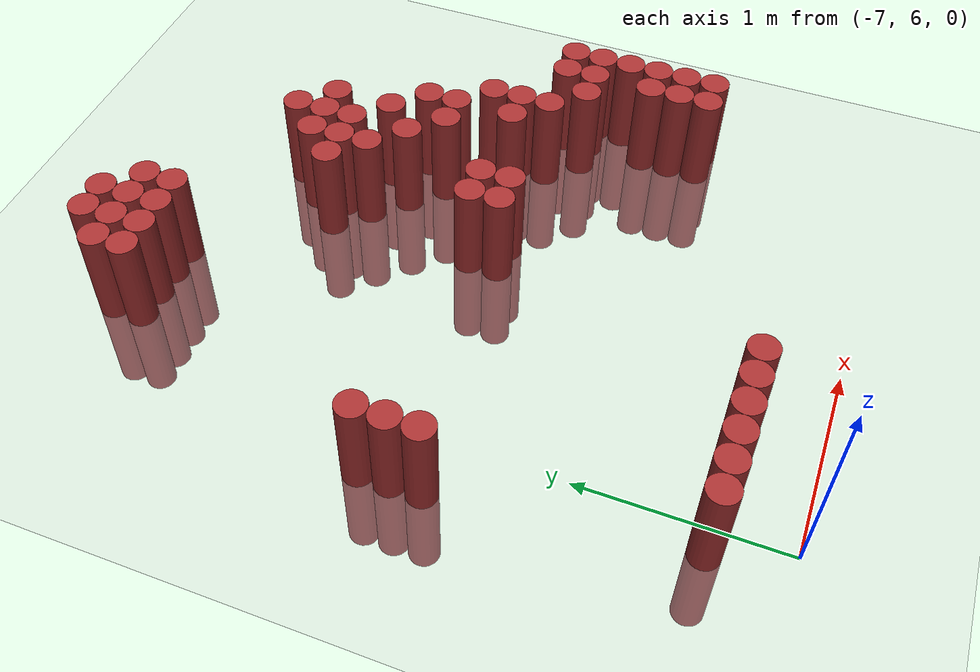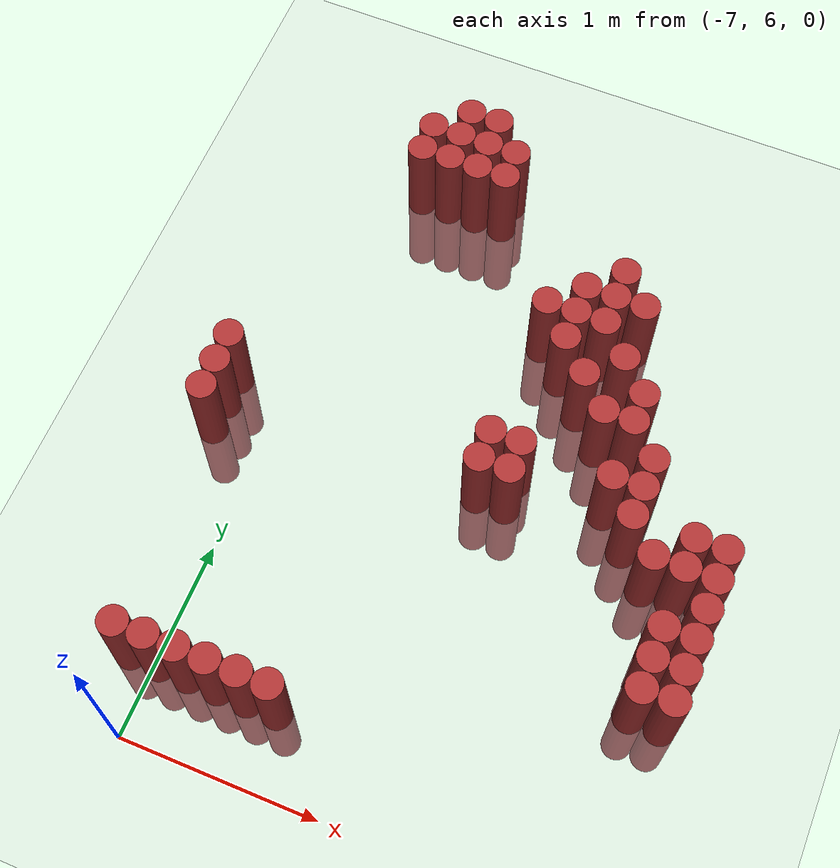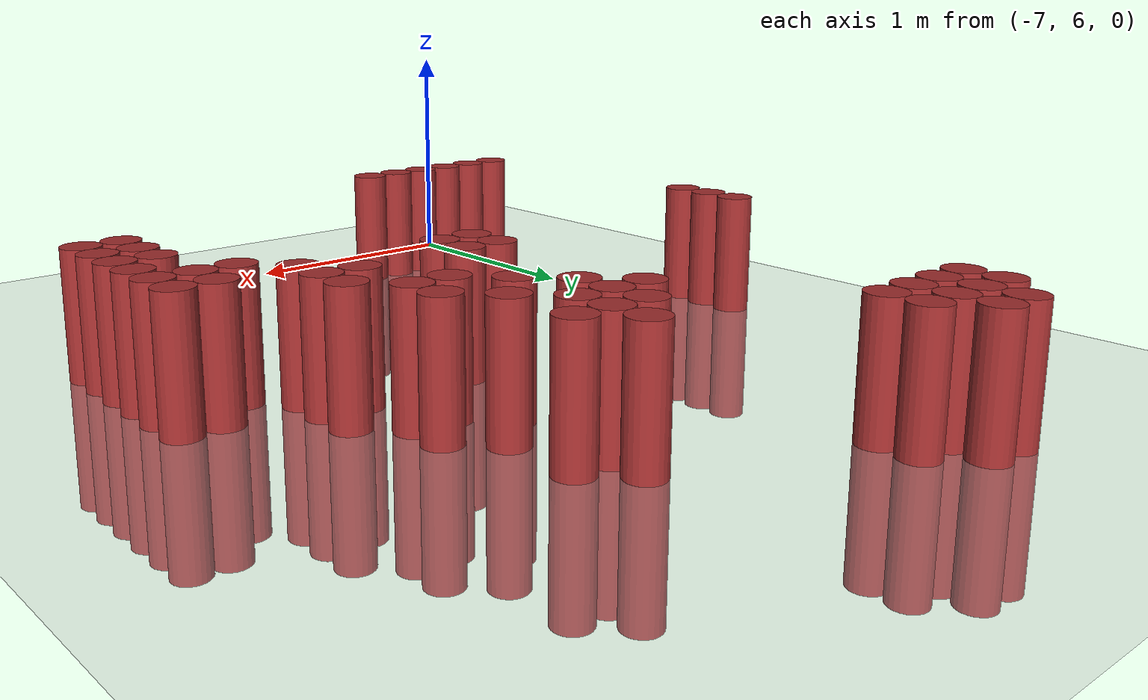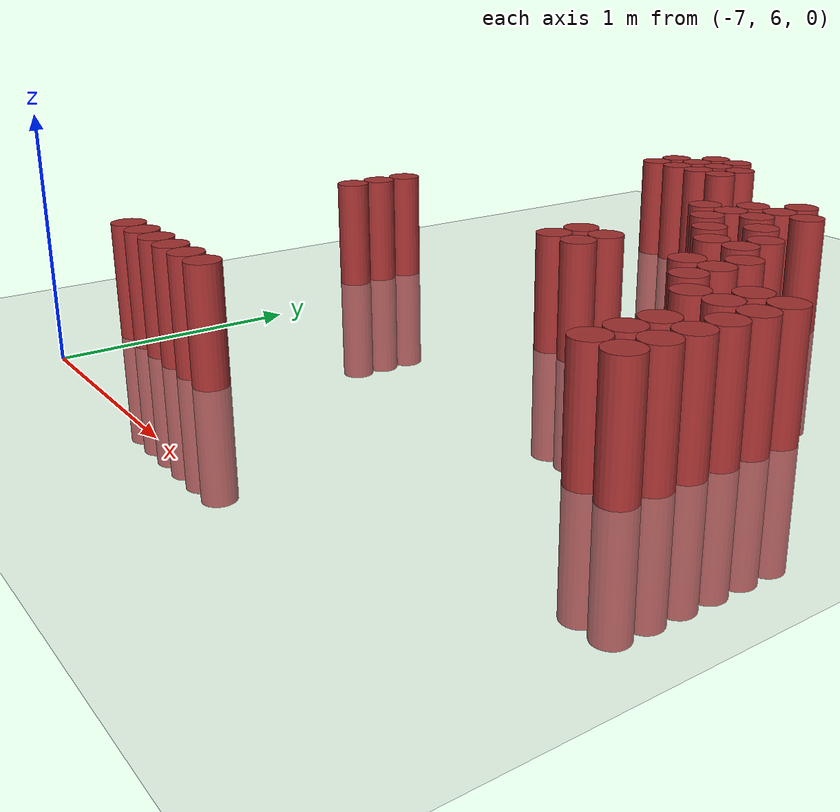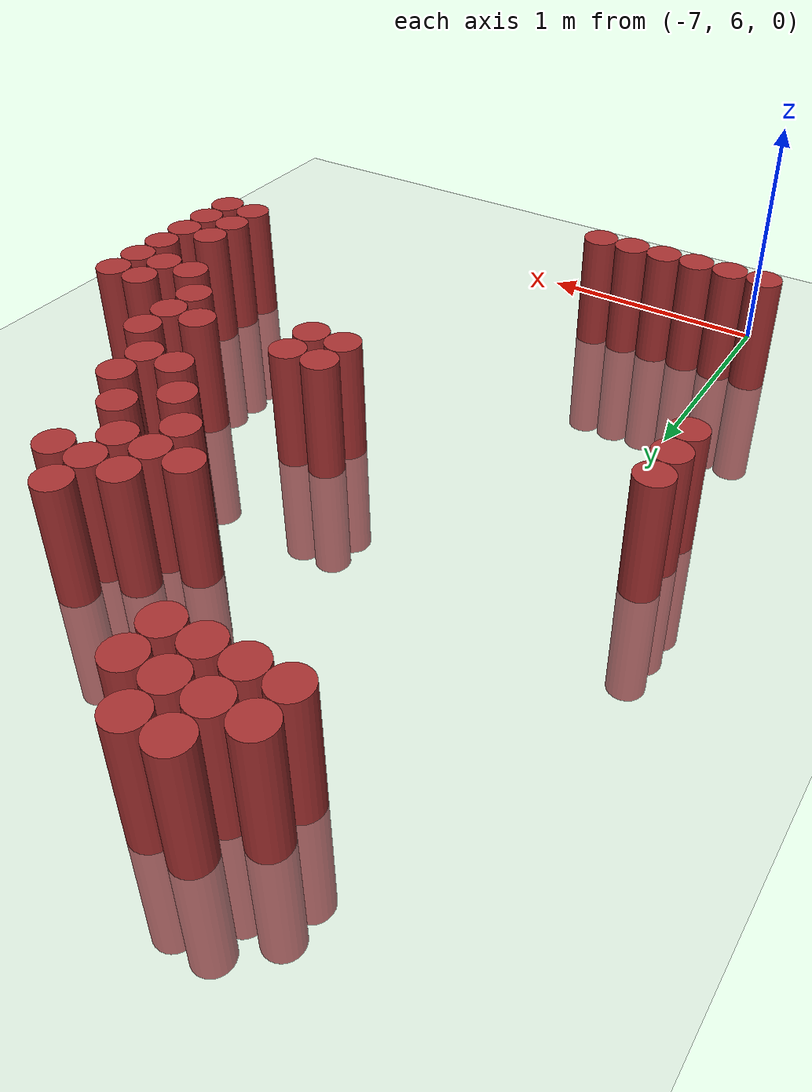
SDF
<sdf version="1.6">
 <world name="default">
  <model name="ground_plane">
   <static>1</static>
   <link name="link">
    <collision name="collision">
     <geometry><plane><normal>0 0 1</normal><size>100 100</size></plane></geometry>
     <surface><friction><ode><mu>100</mu><mu2>50</mu2></ode></friction></surface>
    </collision>
    <visual name="visual">
     <cast_shadows>0</cast_shadows>
     <geometry><plane><normal>0 0 1</normal><size>100 100</size></plane></geometry>
     <material>
      <script><uri>file://media/materials/scripts/gazebo.material</uri><name>Gazebo/Grey</name></script>
     </material>
    </visual>
   </link>
  </model>
  <model name="unit_cylinder_195">
   <static>1</static>
   <pose>-7.275000 7.575000 0.000000 0.000000 0.000000 0.000000</pose>
   <link name="link">
    <inertial>
     <mass>1</mass>
     <inertia><ixx>0.145833</ixx><ixy>0</ixy><ixz>0</ixz><iyy>0.145833</iyy><iyz>0</iyz><izz>0.125</izz></inertia>
    </inertial>
    <collision name="collision">
     <geometry><cylinder><radius>0.075000</radius><length>1</length></cylinder></geometry>
    </collision>
    <visual name="visual">
     <geometry><cylinder><radius>0.075000</radius><length>1</length></cylinder></geometry>
     <material>
      <ambient>0.648000 0.192000 0.192000 1</ambient>
      <diffuse>0.648000 0.192000 0.192000 1</diffuse>
     </material>
     <material>
      <script><name>Gazebo/Grey</name><uri>file://media/materials/scripts/gazebo.material</uri></script>
     </material>
    </visual>
   </link>
  </model>
  <model name="unit_cylinder_196">
   <static>1</static>
   <pose>-7.275000 7.725000 0.000000 0.000000 0.000000 0.000000</pose>
   <link name="link">
    <inertial>
     <mass>1</mass>
     <inertia><ixx>0.145833</ixx><ixy>0</ixy><ixz>0</ixz><iyy>0.145833</iyy><iyz>0</iyz><izz>0.125</izz></inertia>
    </inertial>
    <collision name="collision">
     <geometry><cylinder><radius>0.075000</radius><length>1</length></cylinder></geometry>
    </collision>
    <visual name="visual">
     <geometry><cylinder><radius>0.075000</radius><length>1</length></cylinder></geometry>
     <material>
      <ambient>0.648000 0.192000 0.192000 1</ambient>
      <diffuse>0.648000 0.192000 0.192000 1</diffuse>
     </material>
     <material>
      <script><name>Gazebo/Grey</name><uri>file://media/materials/scripts/gazebo.material</uri></script>
     </material>
    </visual>
   </link>
  </model>
  <model name="unit_cylinder_197">
   <static>1</static>
   <pose>-7.275000 7.875000 0.000000 0.000000 0.000000 0.000000</pose>
   <link name="link">
    <inertial>
     <mass>1</mass>
     <inertia><ixx>0.145833</ixx><ixy>0</ixy><ixz>0</ixz><iyy>0.145833</iyy><iyz>0</iyz><izz>0.125</izz></inertia>
    </inertial>
    <collision name="collision">
     <geometry><cylinder><radius>0.075000</radius><length>1</length></cylinder></geometry>
    </collision>
    <visual name="visual">
     <geometry><cylinder><radius>0.075000</radius><length>1</length></cylinder></geometry>
     <material>
      <ambient>0.648000 0.192000 0.192000 1</ambient>
      <diffuse>0.648000 0.192000 0.192000 1</diffuse>
     </material>
     <material>
      <script><name>Gazebo/Grey</name><uri>file://media/materials/scripts/gazebo.material</uri></script>
     </material>
    </visual>
   </link>
  </model>
  <model name="unit_cylinder_199">
   <static>1</static>
   <pose>-7.125000 6.375000 0.000000 0.000000 0.000000 0.000000</pose>
   <link name="link">
    <inertial>
     <mass>1</mass>
     <inertia><ixx>0.145833</ixx><ixy>0</ixy><ixz>0</ixz><iyy>0.145833</iyy><iyz>0</iyz><izz>0.125</izz></inertia>
    </inertial>
    <collision name="collision">
     <geometry><cylinder><radius>0.075000</radius><length>1</length></cylinder></geometry>
    </collision>
    <visual name="visual">
     <geometry><cylinder><radius>0.075000</radius><length>1</length></cylinder></geometry>
     <material>
      <ambient>0.648000 0.192000 0.192000 1</ambient>
      <diffuse>0.648000 0.192000 0.192000 1</diffuse>
     </material>
     <material>
      <script><name>Gazebo/Grey</name><uri>file://media/materials/scripts/gazebo.material</uri></script>
     </material>
    </visual>
   </link>
  </model>
  <model name="unit_cylinder_201">
   <static>1</static>
   <pose>-6.975000 6.375000 0.000000 0.000000 0.000000 0.000000</pose>
   <link name="link">
    <inertial>
     <mass>1</mass>
     <inertia><ixx>0.145833</ixx><ixy>0</ixy><ixz>0</ixz><iyy>0.145833</iyy><iyz>0</iyz><izz>0.125</izz></inertia>
    </inertial>
    <collision name="collision">
     <geometry><cylinder><radius>0.075000</radius><length>1</length></cylinder></geometry>
    </collision>
    <visual name="visual">
     <geometry><cylinder><radius>0.075000</radius><length>1</length></cylinder></geometry>
     <material>
      <ambient>0.648000 0.192000 0.192000 1</ambient>
      <diffuse>0.648000 0.192000 0.192000 1</diffuse>
     </material>
     <material>
      <script><name>Gazebo/Grey</name><uri>file://media/materials/scripts/gazebo.material</uri></script>
     </material>
    </visual>
   </link>
  </model>
  <model name="unit_cylinder_203">
   <static>1</static>
   <pose>-6.825000 6.375000 0.000000 0.000000 0.000000 0.000000</pose>
   <link name="link">
    <inertial>
     <mass>1</mass>
     <inertia><ixx>0.145833</ixx><ixy>0</ixy><ixz>0</ixz><iyy>0.145833</iyy><iyz>0</iyz><izz>0.125</izz></inertia>
    </inertial>
    <collision name="collision">
     <geometry><cylinder><radius>0.075000</radius><length>1</length></cylinder></geometry>
    </collision>
    <visual name="visual">
     <geometry><cylinder><radius>0.075000</radius><length>1</length></cylinder></geometry>
     <material>
      <ambient>0.648000 0.192000 0.192000 1</ambient>
      <diffuse>0.648000 0.192000 0.192000 1</diffuse>
     </material>
     <material>
      <script><name>Gazebo/Grey</name><uri>file://media/materials/scripts/gazebo.material</uri></script>
     </material>
    </visual>
   </link>
  </model>
  <model name="unit_cylinder_204">
   <static>1</static>
   <pose>-6.825000 9.225000 0.000000 0.000000 0.000000 0.000000</pose>
   <link name="link">
    <inertial>
     <mass>1</mass>
     <inertia><ixx>0.145833</ixx><ixy>0</ixy><ixz>0</ixz><iyy>0.145833</iyy><iyz>0</iyz><izz>0.125</izz></inertia>
    </inertial>
    <collision name="collision">
     <geometry><cylinder><radius>0.075000</radius><length>1</length></cylinder></geometry>
    </collision>
    <visual name="visual">
     <geometry><cylinder><radius>0.075000</radius><length>1</length></cylinder></geometry>
     <material>
      <ambient>0.648000 0.192000 0.192000 1</ambient>
      <diffuse>0.648000 0.192000 0.192000 1</diffuse>
     </material>
     <material>
      <script><name>Gazebo/Grey</name><uri>file://media/materials/scripts/gazebo.material</uri></script>
     </material>
    </visual>
   </link>
  </model>
  <model name="unit_cylinder_205">
   <static>1</static>
   <pose>-6.825000 9.375000 0.000000 0.000000 0.000000 0.000000</pose>
   <link name="link">
    <inertial>
     <mass>1</mass>
     <inertia><ixx>0.145833</ixx><ixy>0</ixy><ixz>0</ixz><iyy>0.145833</iyy><iyz>0</iyz><izz>0.125</izz></inertia>
    </inertial>
    <collision name="collision">
     <geometry><cylinder><radius>0.075000</radius><length>1</length></cylinder></geometry>
    </collision>
    <visual name="visual">
     <geometry><cylinder><radius>0.075000</radius><length>1</length></cylinder></geometry>
     <material>
      <ambient>0.648000 0.192000 0.192000 1</ambient>
      <diffuse>0.648000 0.192000 0.192000 1</diffuse>
     </material>
     <material>
      <script><name>Gazebo/Grey</name><uri>file://media/materials/scripts/gazebo.material</uri></script>
     </material>
    </visual>
   </link>
  </model>
  <model name="unit_cylinder_207">
   <static>1</static>
   <pose>-6.675000 6.375000 0.000000 0.000000 0.000000 0.000000</pose>
   <link name="link">
    <inertial>
     <mass>1</mass>
     <inertia><ixx>0.145833</ixx><ixy>0</ixy><ixz>0</ixz><iyy>0.145833</iyy><iyz>0</iyz><izz>0.125</izz></inertia>
    </inertial>
    <collision name="collision">
     <geometry><cylinder><radius>0.075000</radius><length>1</length></cylinder></geometry>
    </collision>
    <visual name="visual">
     <geometry><cylinder><radius>0.075000</radius><length>1</length></cylinder></geometry>
     <material>
      <ambient>0.648000 0.192000 0.192000 1</ambient>
      <diffuse>0.648000 0.192000 0.192000 1</diffuse>
     </material>
     <material>
      <script><name>Gazebo/Grey</name><uri>file://media/materials/scripts/gazebo.material</uri></script>
     </material>
    </visual>
   </link>
  </model>
  <model name="unit_cylinder_208">
   <static>1</static>
   <pose>-6.675000 9.225000 0.000000 0.000000 0.000000 0.000000</pose>
   <link name="link">
    <inertial>
     <mass>1</mass>
     <inertia><ixx>0.145833</ixx><ixy>0</ixy><ixz>0</ixz><iyy>0.145833</iyy><iyz>0</iyz><izz>0.125</izz></inertia>
    </inertial>
    <collision name="collision">
     <geometry><cylinder><radius>0.075000</radius><length>1</length></cylinder></geometry>
    </collision>
    <visual name="visual">
     <geometry><cylinder><radius>0.075000</radius><length>1</length></cylinder></geometry>
     <material>
      <ambient>0.648000 0.192000 0.192000 1</ambient>
      <diffuse>0.648000 0.192000 0.192000 1</diffuse>
     </material>
     <material>
      <script><name>Gazebo/Grey</name><uri>file://media/materials/scripts/gazebo.material</uri></script>
     </material>
    </visual>
   </link>
  </model>
  <model name="unit_cylinder_209">
   <static>1</static>
   <pose>-6.675000 9.375000 0.000000 0.000000 0.000000 0.000000</pose>
   <link name="link">
    <inertial>
     <mass>1</mass>
     <inertia><ixx>0.145833</ixx><ixy>0</ixy><ixz>0</ixz><iyy>0.145833</iyy><iyz>0</iyz><izz>0.125</izz></inertia>
    </inertial>
    <collision name="collision">
     <geometry><cylinder><radius>0.075000</radius><length>1</length></cylinder></geometry>
    </collision>
    <visual name="visual">
     <geometry><cylinder><radius>0.075000</radius><length>1</length></cylinder></geometry>
     <material>
      <ambient>0.648000 0.192000 0.192000 1</ambient>
      <diffuse>0.648000 0.192000 0.192000 1</diffuse>
     </material>
     <material>
      <script><name>Gazebo/Grey</name><uri>file://media/materials/scripts/gazebo.material</uri></script>
     </material>
    </visual>
   </link>
  </model>
  <model name="unit_cylinder_210">
   <static>1</static>
   <pose>-6.675000 9.525000 0.000000 0.000000 0.000000 0.000000</pose>
   <link name="link">
    <inertial>
     <mass>1</mass>
     <inertia><ixx>0.145833</ixx><ixy>0</ixy><ixz>0</ixz><iyy>0.145833</iyy><iyz>0</iyz><izz>0.125</izz></inertia>
    </inertial>
    <collision name="collision">
     <geometry><cylinder><radius>0.075000</radius><length>1</length></cylinder></geometry>
    </collision>
    <visual name="visual">
     <geometry><cylinder><radius>0.075000</radius><length>1</length></cylinder></geometry>
     <material>
      <ambient>0.648000 0.192000 0.192000 1</ambient>
      <diffuse>0.648000 0.192000 0.192000 1</diffuse>
     </material>
     <material>
      <script><name>Gazebo/Grey</name><uri>file://media/materials/scripts/gazebo.material</uri></script>
     </material>
    </visual>
   </link>
  </model>
  <model name="unit_cylinder_212">
   <static>1</static>
   <pose>-6.525000 6.375000 0.000000 0.000000 0.000000 0.000000</pose>
   <link name="link">
    <inertial>
     <mass>1</mass>
     <inertia><ixx>0.145833</ixx><ixy>0</ixy><ixz>0</ixz><iyy>0.145833</iyy><iyz>0</iyz><izz>0.125</izz></inertia>
    </inertial>
    <collision name="collision">
     <geometry><cylinder><radius>0.075000</radius><length>1</length></cylinder></geometry>
    </collision>
    <visual name="visual">
     <geometry><cylinder><radius>0.075000</radius><length>1</length></cylinder></geometry>
     <material>
      <ambient>0.648000 0.192000 0.192000 1</ambient>
      <diffuse>0.648000 0.192000 0.192000 1</diffuse>
     </material>
     <material>
      <script><name>Gazebo/Grey</name><uri>file://media/materials/scripts/gazebo.material</uri></script>
     </material>
    </visual>
   </link>
  </model>
  <model name="unit_cylinder_213">
   <static>1</static>
   <pose>-6.525000 9.225000 0.000000 0.000000 0.000000 0.000000</pose>
   <link name="link">
    <inertial>
     <mass>1</mass>
     <inertia><ixx>0.145833</ixx><ixy>0</ixy><ixz>0</ixz><iyy>0.145833</iyy><iyz>0</iyz><izz>0.125</izz></inertia>
    </inertial>
    <collision name="collision">
     <geometry><cylinder><radius>0.075000</radius><length>1</length></cylinder></geometry>
    </collision>
    <visual name="visual">
     <geometry><cylinder><radius>0.075000</radius><length>1</length></cylinder></geometry>
     <material>
      <ambient>0.648000 0.192000 0.192000 1</ambient>
      <diffuse>0.648000 0.192000 0.192000 1</diffuse>
     </material>
     <material>
      <script><name>Gazebo/Grey</name><uri>file://media/materials/scripts/gazebo.material</uri></script>
     </material>
    </visual>
   </link>
  </model>
  <model name="unit_cylinder_214">
   <static>1</static>
   <pose>-6.525000 9.375000 0.000000 0.000000 0.000000 0.000000</pose>
   <link name="link">
    <inertial>
     <mass>1</mass>
     <inertia><ixx>0.145833</ixx><ixy>0</ixy><ixz>0</ixz><iyy>0.145833</iyy><iyz>0</iyz><izz>0.125</izz></inertia>
    </inertial>
    <collision name="collision">
     <geometry><cylinder><radius>0.075000</radius><length>1</length></cylinder></geometry>
    </collision>
    <visual name="visual">
     <geometry><cylinder><radius>0.075000</radius><length>1</length></cylinder></geometry>
     <material>
      <ambient>0.648000 0.192000 0.192000 1</ambient>
      <diffuse>0.648000 0.192000 0.192000 1</diffuse>
     </material>
     <material>
      <script><name>Gazebo/Grey</name><uri>file://media/materials/scripts/gazebo.material</uri></script>
     </material>
    </visual>
   </link>
  </model>
  <model name="unit_cylinder_215">
   <static>1</static>
   <pose>-6.525000 9.525000 0.000000 0.000000 0.000000 0.000000</pose>
   <link name="link">
    <inertial>
     <mass>1</mass>
     <inertia><ixx>0.145833</ixx><ixy>0</ixy><ixz>0</ixz><iyy>0.145833</iyy><iyz>0</iyz><izz>0.125</izz></inertia>
    </inertial>
    <collision name="collision">
     <geometry><cylinder><radius>0.075000</radius><length>1</length></cylinder></geometry>
    </collision>
    <visual name="visual">
     <geometry><cylinder><radius>0.075000</radius><length>1</length></cylinder></geometry>
     <material>
      <ambient>0.648000 0.192000 0.192000 1</ambient>
      <diffuse>0.648000 0.192000 0.192000 1</diffuse>
     </material>
     <material>
      <script><name>Gazebo/Grey</name><uri>file://media/materials/scripts/gazebo.material</uri></script>
     </material>
    </visual>
   </link>
  </model>
  <model name="unit_cylinder_224">
   <static>1</static>
   <pose>-6.375000 6.375000 0.000000 0.000000 0.000000 0.000000</pose>
   <link name="link">
    <inertial>
     <mass>1</mass>
     <inertia><ixx>0.145833</ixx><ixy>0</ixy><ixz>0</ixz><iyy>0.145833</iyy><iyz>0</iyz><izz>0.125</izz></inertia>
    </inertial>
    <collision name="collision">
     <geometry><cylinder><radius>0.075000</radius><length>1</length></cylinder></geometry>
    </collision>
    <visual name="visual">
     <geometry><cylinder><radius>0.075000</radius><length>1</length></cylinder></geometry>
     <material>
      <ambient>0.648000 0.192000 0.192000 1</ambient>
      <diffuse>0.648000 0.192000 0.192000 1</diffuse>
     </material>
     <material>
      <script><name>Gazebo/Grey</name><uri>file://media/materials/scripts/gazebo.material</uri></script>
     </material>
    </visual>
   </link>
  </model>
  <model name="unit_cylinder_225">
   <static>1</static>
   <pose>-6.375000 9.225000 0.000000 0.000000 0.000000 0.000000</pose>
   <link name="link">
    <inertial>
     <mass>1</mass>
     <inertia><ixx>0.145833</ixx><ixy>0</ixy><ixz>0</ixz><iyy>0.145833</iyy><iyz>0</iyz><izz>0.125</izz></inertia>
    </inertial>
    <collision name="collision">
     <geometry><cylinder><radius>0.075000</radius><length>1</length></cylinder></geometry>
    </collision>
    <visual name="visual">
     <geometry><cylinder><radius>0.075000</radius><length>1</length></cylinder></geometry>
     <material>
      <ambient>0.648000 0.192000 0.192000 1</ambient>
      <diffuse>0.648000 0.192000 0.192000 1</diffuse>
     </material>
     <material>
      <script><name>Gazebo/Grey</name><uri>file://media/materials/scripts/gazebo.material</uri></script>
     </material>
    </visual>
   </link>
  </model>
  <model name="unit_cylinder_226">
   <static>1</static>
   <pose>-6.375000 9.375000 0.000000 0.000000 0.000000 0.000000</pose>
   <link name="link">
    <inertial>
     <mass>1</mass>
     <inertia><ixx>0.145833</ixx><ixy>0</ixy><ixz>0</ixz><iyy>0.145833</iyy><iyz>0</iyz><izz>0.125</izz></inertia>
    </inertial>
    <collision name="collision">
     <geometry><cylinder><radius>0.075000</radius><length>1</length></cylinder></geometry>
    </collision>
    <visual name="visual">
     <geometry><cylinder><radius>0.075000</radius><length>1</length></cylinder></geometry>
     <material>
      <ambient>0.648000 0.192000 0.192000 1</ambient>
      <diffuse>0.648000 0.192000 0.192000 1</diffuse>
     </material>
     <material>
      <script><name>Gazebo/Grey</name><uri>file://media/materials/scripts/gazebo.material</uri></script>
     </material>
    </visual>
   </link>
  </model>
  <model name="unit_cylinder_227">
   <static>1</static>
   <pose>-5.925000 7.725000 0.000000 0.000000 0.000000 0.000000</pose>
   <link name="link">
    <inertial>
     <mass>1</mass>
     <inertia><ixx>0.145833</ixx><ixy>0</ixy><ixz>0</ixz><iyy>0.145833</iyy><iyz>0</iyz><izz>0.125</izz></inertia>
    </inertial>
    <collision name="collision">
     <geometry><cylinder><radius>0.075000</radius><length>1</length></cylinder></geometry>
    </collision>
    <visual name="visual">
     <geometry><cylinder><radius>0.075000</radius><length>1</length></cylinder></geometry>
     <material>
      <ambient>0.648000 0.192000 0.192000 1</ambient>
      <diffuse>0.648000 0.192000 0.192000 1</diffuse>
     </material>
     <material>
      <script><name>Gazebo/Grey</name><uri>file://media/materials/scripts/gazebo.material</uri></script>
     </material>
    </visual>
   </link>
  </model>
  <model name="unit_cylinder_228">
   <static>1</static>
   <pose>-5.925000 7.875000 0.000000 0.000000 0.000000 0.000000</pose>
   <link name="link">
    <inertial>
     <mass>1</mass>
     <inertia><ixx>0.145833</ixx><ixy>0</ixy><ixz>0</ixz><iyy>0.145833</iyy><iyz>0</iyz><izz>0.125</izz></inertia>
    </inertial>
    <collision name="collision">
     <geometry><cylinder><radius>0.075000</radius><length>1</length></cylinder></geometry>
    </collision>
    <visual name="visual">
     <geometry><cylinder><radius>0.075000</radius><length>1</length></cylinder></geometry>
     <material>
      <ambient>0.648000 0.192000 0.192000 1</ambient>
      <diffuse>0.648000 0.192000 0.192000 1</diffuse>
     </material>
     <material>
      <script><name>Gazebo/Grey</name><uri>file://media/materials/scripts/gazebo.material</uri></script>
     </material>
    </visual>
   </link>
  </model>
  <model name="unit_cylinder_229">
   <static>1</static>
   <pose>-5.925000 8.625000 0.000000 0.000000 0.000000 0.000000</pose>
   <link name="link">
    <inertial>
     <mass>1</mass>
     <inertia><ixx>0.145833</ixx><ixy>0</ixy><ixz>0</ixz><iyy>0.145833</iyy><iyz>0</iyz><izz>0.125</izz></inertia>
    </inertial>
    <collision name="collision">
     <geometry><cylinder><radius>0.075000</radius><length>1</length></cylinder></geometry>
    </collision>
    <visual name="visual">
     <geometry><cylinder><radius>0.075000</radius><length>1</length></cylinder></geometry>
     <material>
      <ambient>0.648000 0.192000 0.192000 1</ambient>
      <diffuse>0.648000 0.192000 0.192000 1</diffuse>
     </material>
     <material>
      <script><name>Gazebo/Grey</name><uri>file://media/materials/scripts/gazebo.material</uri></script>
     </material>
    </visual>
   </link>
  </model>
  <model name="unit_cylinder_230">
   <static>1</static>
   <pose>-5.775000 7.725000 0.000000 0.000000 0.000000 0.000000</pose>
   <link name="link">
    <inertial>
     <mass>1</mass>
     <inertia><ixx>0.145833</ixx><ixy>0</ixy><ixz>0</ixz><iyy>0.145833</iyy><iyz>0</iyz><izz>0.125</izz></inertia>
    </inertial>
    <collision name="collision">
     <geometry><cylinder><radius>0.075000</radius><length>1</length></cylinder></geometry>
    </collision>
    <visual name="visual">
     <geometry><cylinder><radius>0.075000</radius><length>1</length></cylinder></geometry>
     <material>
      <ambient>0.648000 0.192000 0.192000 1</ambient>
      <diffuse>0.648000 0.192000 0.192000 1</diffuse>
     </material>
     <material>
      <script><name>Gazebo/Grey</name><uri>file://media/materials/scripts/gazebo.material</uri></script>
     </material>
    </visual>
   </link>
  </model>
  <model name="unit_cylinder_231">
   <static>1</static>
   <pose>-5.775000 7.875000 0.000000 0.000000 0.000000 0.000000</pose>
   <link name="link">
    <inertial>
     <mass>1</mass>
     <inertia><ixx>0.145833</ixx><ixy>0</ixy><ixz>0</ixz><iyy>0.145833</iyy><iyz>0</iyz><izz>0.125</izz></inertia>
    </inertial>
    <collision name="collision">
     <geometry><cylinder><radius>0.075000</radius><length>1</length></cylinder></geometry>
    </collision>
    <visual name="visual">
     <geometry><cylinder><radius>0.075000</radius><length>1</length></cylinder></geometry>
     <material>
      <ambient>0.648000 0.192000 0.192000 1</ambient>
      <diffuse>0.648000 0.192000 0.192000 1</diffuse>
     </material>
     <material>
      <script><name>Gazebo/Grey</name><uri>file://media/materials/scripts/gazebo.material</uri></script>
     </material>
    </visual>
   </link>
  </model>
  <model name="unit_cylinder_232">
   <static>1</static>
   <pose>-5.775000 8.475000 0.000000 0.000000 0.000000 0.000000</pose>
   <link name="link">
    <inertial>
     <mass>1</mass>
     <inertia><ixx>0.145833</ixx><ixy>0</ixy><ixz>0</ixz><iyy>0.145833</iyy><iyz>0</iyz><izz>0.125</izz></inertia>
    </inertial>
    <collision name="collision">
     <geometry><cylinder><radius>0.075000</radius><length>1</length></cylinder></geometry>
    </collision>
    <visual name="visual">
     <geometry><cylinder><radius>0.075000</radius><length>1</length></cylinder></geometry>
     <material>
      <ambient>0.648000 0.192000 0.192000 1</ambient>
      <diffuse>0.648000 0.192000 0.192000 1</diffuse>
     </material>
     <material>
      <script><name>Gazebo/Grey</name><uri>file://media/materials/scripts/gazebo.material</uri></script>
     </material>
    </visual>
   </link>
  </model>
  <model name="unit_cylinder_233">
   <static>1</static>
   <pose>-5.775000 8.625000 0.000000 0.000000 0.000000 0.000000</pose>
   <link name="link">
    <inertial>
     <mass>1</mass>
     <inertia><ixx>0.145833</ixx><ixy>0</ixy><ixz>0</ixz><iyy>0.145833</iyy><iyz>0</iyz><izz>0.125</izz></inertia>
    </inertial>
    <collision name="collision">
     <geometry><cylinder><radius>0.075000</radius><length>1</length></cylinder></geometry>
    </collision>
    <visual name="visual">
     <geometry><cylinder><radius>0.075000</radius><length>1</length></cylinder></geometry>
     <material>
      <ambient>0.648000 0.192000 0.192000 1</ambient>
      <diffuse>0.648000 0.192000 0.192000 1</diffuse>
     </material>
     <material>
      <script><name>Gazebo/Grey</name><uri>file://media/materials/scripts/gazebo.material</uri></script>
     </material>
    </visual>
   </link>
  </model>
  <model name="unit_cylinder_234">
   <static>1</static>
   <pose>-5.775000 8.775000 0.000000 0.000000 0.000000 0.000000</pose>
   <link name="link">
    <inertial>
     <mass>1</mass>
     <inertia><ixx>0.145833</ixx><ixy>0</ixy><ixz>0</ixz><iyy>0.145833</iyy><iyz>0</iyz><izz>0.125</izz></inertia>
    </inertial>
    <collision name="collision">
     <geometry><cylinder><radius>0.075000</radius><length>1</length></cylinder></geometry>
    </collision>
    <visual name="visual">
     <geometry><cylinder><radius>0.075000</radius><length>1</length></cylinder></geometry>
     <material>
      <ambient>0.648000 0.192000 0.192000 1</ambient>
      <diffuse>0.648000 0.192000 0.192000 1</diffuse>
     </material>
     <material>
      <script><name>Gazebo/Grey</name><uri>file://media/materials/scripts/gazebo.material</uri></script>
     </material>
    </visual>
   </link>
  </model>
  <model name="unit_cylinder_235">
   <static>1</static>
   <pose>-5.625000 8.325000 0.000000 0.000000 0.000000 0.000000</pose>
   <link name="link">
    <inertial>
     <mass>1</mass>
     <inertia><ixx>0.145833</ixx><ixy>0</ixy><ixz>0</ixz><iyy>0.145833</iyy><iyz>0</iyz><izz>0.125</izz></inertia>
    </inertial>
    <collision name="collision">
     <geometry><cylinder><radius>0.075000</radius><length>1</length></cylinder></geometry>
    </collision>
    <visual name="visual">
     <geometry><cylinder><radius>0.075000</radius><length>1</length></cylinder></geometry>
     <material>
      <ambient>0.648000 0.192000 0.192000 1</ambient>
      <diffuse>0.648000 0.192000 0.192000 1</diffuse>
     </material>
     <material>
      <script><name>Gazebo/Grey</name><uri>file://media/materials/scripts/gazebo.material</uri></script>
     </material>
    </visual>
   </link>
  </model>
  <model name="unit_cylinder_236">
   <static>1</static>
   <pose>-5.625000 8.625000 0.000000 0.000000 0.000000 0.000000</pose>
   <link name="link">
    <inertial>
     <mass>1</mass>
     <inertia><ixx>0.145833</ixx><ixy>0</ixy><ixz>0</ixz><iyy>0.145833</iyy><iyz>0</iyz><izz>0.125</izz></inertia>
    </inertial>
    <collision name="collision">
     <geometry><cylinder><radius>0.075000</radius><length>1</length></cylinder></geometry>
    </collision>
    <visual name="visual">
     <geometry><cylinder><radius>0.075000</radius><length>1</length></cylinder></geometry>
     <material>
      <ambient>0.648000 0.192000 0.192000 1</ambient>
      <diffuse>0.648000 0.192000 0.192000 1</diffuse>
     </material>
     <material>
      <script><name>Gazebo/Grey</name><uri>file://media/materials/scripts/gazebo.material</uri></script>
     </material>
    </visual>
   </link>
  </model>
  <model name="unit_cylinder_237">
   <static>1</static>
   <pose>-5.625000 8.775000 0.000000 0.000000 0.000000 0.000000</pose>
   <link name="link">
    <inertial>
     <mass>1</mass>
     <inertia><ixx>0.145833</ixx><ixy>0</ixy><ixz>0</ixz><iyy>0.145833</iyy><iyz>0</iyz><izz>0.125</izz></inertia>
    </inertial>
    <collision name="collision">
     <geometry><cylinder><radius>0.075000</radius><length>1</length></cylinder></geometry>
    </collision>
    <visual name="visual">
     <geometry><cylinder><radius>0.075000</radius><length>1</length></cylinder></geometry>
     <material>
      <ambient>0.648000 0.192000 0.192000 1</ambient>
      <diffuse>0.648000 0.192000 0.192000 1</diffuse>
     </material>
     <material>
      <script><name>Gazebo/Grey</name><uri>file://media/materials/scripts/gazebo.material</uri></script>
     </material>
    </visual>
   </link>
  </model>
  <model name="unit_cylinder_238">
   <static>1</static>
   <pose>-5.625000 8.925000 0.000000 0.000000 0.000000 0.000000</pose>
   <link name="link">
    <inertial>
     <mass>1</mass>
     <inertia><ixx>0.145833</ixx><ixy>0</ixy><ixz>0</ixz><iyy>0.145833</iyy><iyz>0</iyz><izz>0.125</izz></inertia>
    </inertial>
    <collision name="collision">
     <geometry><cylinder><radius>0.075000</radius><length>1</length></cylinder></geometry>
    </collision>
    <visual name="visual">
     <geometry><cylinder><radius>0.075000</radius><length>1</length></cylinder></geometry>
     <material>
      <ambient>0.648000 0.192000 0.192000 1</ambient>
      <diffuse>0.648000 0.192000 0.192000 1</diffuse>
     </material>
     <material>
      <script><name>Gazebo/Grey</name><uri>file://media/materials/scripts/gazebo.material</uri></script>
     </material>
    </visual>
   </link>
  </model>
  <model name="unit_cylinder_239">
   <static>1</static>
   <pose>-5.475000 8.175000 0.000000 0.000000 0.000000 0.000000</pose>
   <link name="link">
    <inertial>
     <mass>1</mass>
     <inertia><ixx>0.145833</ixx><ixy>0</ixy><ixz>0</ixz><iyy>0.145833</iyy><iyz>0</iyz><izz>0.125</izz></inertia>
    </inertial>
    <collision name="collision">
     <geometry><cylinder><radius>0.075000</radius><length>1</length></cylinder></geometry>
    </collision>
    <visual name="visual">
     <geometry><cylinder><radius>0.075000</radius><length>1</length></cylinder></geometry>
     <material>
      <ambient>0.648000 0.192000 0.192000 1</ambient>
      <diffuse>0.648000 0.192000 0.192000 1</diffuse>
     </material>
     <material>
      <script><name>Gazebo/Grey</name><uri>file://media/materials/scripts/gazebo.material</uri></script>
     </material>
    </visual>
   </link>
  </model>
  <model name="unit_cylinder_240">
   <static>1</static>
   <pose>-5.475000 8.475000 0.000000 0.000000 0.000000 0.000000</pose>
   <link name="link">
    <inertial>
     <mass>1</mass>
     <inertia><ixx>0.145833</ixx><ixy>0</ixy><ixz>0</ixz><iyy>0.145833</iyy><iyz>0</iyz><izz>0.125</izz></inertia>
    </inertial>
    <collision name="collision">
     <geometry><cylinder><radius>0.075000</radius><length>1</length></cylinder></geometry>
    </collision>
    <visual name="visual">
     <geometry><cylinder><radius>0.075000</radius><length>1</length></cylinder></geometry>
     <material>
      <ambient>0.648000 0.192000 0.192000 1</ambient>
      <diffuse>0.648000 0.192000 0.192000 1</diffuse>
     </material>
     <material>
      <script><name>Gazebo/Grey</name><uri>file://media/materials/scripts/gazebo.material</uri></script>
     </material>
    </visual>
   </link>
  </model>
  <model name="unit_cylinder_241">
   <static>1</static>
   <pose>-5.475000 8.775000 0.000000 0.000000 0.000000 0.000000</pose>
   <link name="link">
    <inertial>
     <mass>1</mass>
     <inertia><ixx>0.145833</ixx><ixy>0</ixy><ixz>0</ixz><iyy>0.145833</iyy><iyz>0</iyz><izz>0.125</izz></inertia>
    </inertial>
    <collision name="collision">
     <geometry><cylinder><radius>0.075000</radius><length>1</length></cylinder></geometry>
    </collision>
    <visual name="visual">
     <geometry><cylinder><radius>0.075000</radius><length>1</length></cylinder></geometry>
     <material>
      <ambient>0.648000 0.192000 0.192000 1</ambient>
      <diffuse>0.648000 0.192000 0.192000 1</diffuse>
     </material>
     <material>
      <script><name>Gazebo/Grey</name><uri>file://media/materials/scripts/gazebo.material</uri></script>
     </material>
    </visual>
   </link>
  </model>
  <model name="unit_cylinder_242">
   <static>1</static>
   <pose>-5.325000 7.875000 0.000000 0.000000 0.000000 0.000000</pose>
   <link name="link">
    <inertial>
     <mass>1</mass>
     <inertia><ixx>0.145833</ixx><ixy>0</ixy><ixz>0</ixz><iyy>0.145833</iyy><iyz>0</iyz><izz>0.125</izz></inertia>
    </inertial>
    <collision name="collision">
     <geometry><cylinder><radius>0.075000</radius><length>1</length></cylinder></geometry>
    </collision>
    <visual name="visual">
     <geometry><cylinder><radius>0.075000</radius><length>1</length></cylinder></geometry>
     <material>
      <ambient>0.648000 0.192000 0.192000 1</ambient>
      <diffuse>0.648000 0.192000 0.192000 1</diffuse>
     </material>
     <material>
      <script><name>Gazebo/Grey</name><uri>file://media/materials/scripts/gazebo.material</uri></script>
     </material>
    </visual>
   </link>
  </model>
  <model name="unit_cylinder_243">
   <static>1</static>
   <pose>-5.325000 8.175000 0.000000 0.000000 0.000000 0.000000</pose>
   <link name="link">
    <inertial>
     <mass>1</mass>
     <inertia><ixx>0.145833</ixx><ixy>0</ixy><ixz>0</ixz><iyy>0.145833</iyy><iyz>0</iyz><izz>0.125</izz></inertia>
    </inertial>
    <collision name="collision">
     <geometry><cylinder><radius>0.075000</radius><length>1</length></cylinder></geometry>
    </collision>
    <visual name="visual">
     <geometry><cylinder><radius>0.075000</radius><length>1</length></cylinder></geometry>
     <material>
      <ambient>0.648000 0.192000 0.192000 1</ambient>
      <diffuse>0.648000 0.192000 0.192000 1</diffuse>
     </material>
     <material>
      <script><name>Gazebo/Grey</name><uri>file://media/materials/scripts/gazebo.material</uri></script>
     </material>
    </visual>
   </link>
  </model>
  <model name="unit_cylinder_244">
   <static>1</static>
   <pose>-5.325000 8.325000 0.000000 0.000000 0.000000 0.000000</pose>
   <link name="link">
    <inertial>
     <mass>1</mass>
     <inertia><ixx>0.145833</ixx><ixy>0</ixy><ixz>0</ixz><iyy>0.145833</iyy><iyz>0</iyz><izz>0.125</izz></inertia>
    </inertial>
    <collision name="collision">
     <geometry><cylinder><radius>0.075000</radius><length>1</length></cylinder></geometry>
    </collision>
    <visual name="visual">
     <geometry><cylinder><radius>0.075000</radius><length>1</length></cylinder></geometry>
     <material>
      <ambient>0.648000 0.192000 0.192000 1</ambient>
      <diffuse>0.648000 0.192000 0.192000 1</diffuse>
     </material>
     <material>
      <script><name>Gazebo/Grey</name><uri>file://media/materials/scripts/gazebo.material</uri></script>
     </material>
    </visual>
   </link>
  </model>
  <model name="unit_cylinder_245">
   <static>1</static>
   <pose>-5.175000 7.725000 0.000000 0.000000 0.000000 0.000000</pose>
   <link name="link">
    <inertial>
     <mass>1</mass>
     <inertia><ixx>0.145833</ixx><ixy>0</ixy><ixz>0</ixz><iyy>0.145833</iyy><iyz>0</iyz><izz>0.125</izz></inertia>
    </inertial>
    <collision name="collision">
     <geometry><cylinder><radius>0.075000</radius><length>1</length></cylinder></geometry>
    </collision>
    <visual name="visual">
     <geometry><cylinder><radius>0.075000</radius><length>1</length></cylinder></geometry>
     <material>
      <ambient>0.648000 0.192000 0.192000 1</ambient>
      <diffuse>0.648000 0.192000 0.192000 1</diffuse>
     </material>
     <material>
      <script><name>Gazebo/Grey</name><uri>file://media/materials/scripts/gazebo.material</uri></script>
     </material>
    </visual>
   </link>
  </model>
  <model name="unit_cylinder_246">
   <static>1</static>
   <pose>-5.175000 7.875000 0.000000 0.000000 0.000000 0.000000</pose>
   <link name="link">
    <inertial>
     <mass>1</mass>
     <inertia><ixx>0.145833</ixx><ixy>0</ixy><ixz>0</ixz><iyy>0.145833</iyy><iyz>0</iyz><izz>0.125</izz></inertia>
    </inertial>
    <collision name="collision">
     <geometry><cylinder><radius>0.075000</radius><length>1</length></cylinder></geometry>
    </collision>
    <visual name="visual">
     <geometry><cylinder><radius>0.075000</radius><length>1</length></cylinder></geometry>
     <material>
      <ambient>0.648000 0.192000 0.192000 1</ambient>
      <diffuse>0.648000 0.192000 0.192000 1</diffuse>
     </material>
     <material>
      <script><name>Gazebo/Grey</name><uri>file://media/materials/scripts/gazebo.material</uri></script>
     </material>
    </visual>
   </link>
  </model>
  <model name="unit_cylinder_247">
   <static>1</static>
   <pose>-5.175000 8.025000 0.000000 0.000000 0.000000 0.000000</pose>
   <link name="link">
    <inertial>
     <mass>1</mass>
     <inertia><ixx>0.145833</ixx><ixy>0</ixy><ixz>0</ixz><iyy>0.145833</iyy><iyz>0</iyz><izz>0.125</izz></inertia>
    </inertial>
    <collision name="collision">
     <geometry><cylinder><radius>0.075000</radius><length>1</length></cylinder></geometry>
    </collision>
    <visual name="visual">
     <geometry><cylinder><radius>0.075000</radius><length>1</length></cylinder></geometry>
     <material>
      <ambient>0.648000 0.192000 0.192000 1</ambient>
      <diffuse>0.648000 0.192000 0.192000 1</diffuse>
     </material>
     <material>
      <script><name>Gazebo/Grey</name><uri>file://media/materials/scripts/gazebo.material</uri></script>
     </material>
    </visual>
   </link>
  </model>
  <model name="unit_cylinder_250">
   <static>1</static>
   <pose>-5.025000 7.575000 0.000000 0.000000 0.000000 0.000000</pose>
   <link name="link">
    <inertial>
     <mass>1</mass>
     <inertia><ixx>0.145833</ixx><ixy>0</ixy><ixz>0</ixz><iyy>0.145833</iyy><iyz>0</iyz><izz>0.125</izz></inertia>
    </inertial>
    <collision name="collision">
     <geometry><cylinder><radius>0.075000</radius><length>1</length></cylinder></geometry>
    </collision>
    <visual name="visual">
     <geometry><cylinder><radius>0.075000</radius><length>1</length></cylinder></geometry>
     <material>
      <ambient>0.648000 0.192000 0.192000 1</ambient>
      <diffuse>0.648000 0.192000 0.192000 1</diffuse>
     </material>
     <material>
      <script><name>Gazebo/Grey</name><uri>file://media/materials/scripts/gazebo.material</uri></script>
     </material>
    </visual>
   </link>
  </model>
  <model name="unit_cylinder_255">
   <static>1</static>
   <pose>-4.875000 6.975000 0.000000 0.000000 0.000000 0.000000</pose>
   <link name="link">
    <inertial>
     <mass>1</mass>
     <inertia><ixx>0.145833</ixx><ixy>0</ixy><ixz>0</ixz><iyy>0.145833</iyy><iyz>0</iyz><izz>0.125</izz></inertia>
    </inertial>
    <collision name="collision">
     <geometry><cylinder><radius>0.075000</radius><length>1</length></cylinder></geometry>
    </collision>
    <visual name="visual">
     <geometry><cylinder><radius>0.075000</radius><length>1</length></cylinder></geometry>
     <material>
      <ambient>0.648000 0.192000 0.192000 1</ambient>
      <diffuse>0.648000 0.192000 0.192000 1</diffuse>
     </material>
     <material>
      <script><name>Gazebo/Grey</name><uri>file://media/materials/scripts/gazebo.material</uri></script>
     </material>
    </visual>
   </link>
  </model>
  <model name="unit_cylinder_256">
   <static>1</static>
   <pose>-4.875000 7.125000 0.000000 0.000000 0.000000 0.000000</pose>
   <link name="link">
    <inertial>
     <mass>1</mass>
     <inertia><ixx>0.145833</ixx><ixy>0</ixy><ixz>0</ixz><iyy>0.145833</iyy><iyz>0</iyz><izz>0.125</izz></inertia>
    </inertial>
    <collision name="collision">
     <geometry><cylinder><radius>0.075000</radius><length>1</length></cylinder></geometry>
    </collision>
    <visual name="visual">
     <geometry><cylinder><radius>0.075000</radius><length>1</length></cylinder></geometry>
     <material>
      <ambient>0.648000 0.192000 0.192000 1</ambient>
      <diffuse>0.648000 0.192000 0.192000 1</diffuse>
     </material>
     <material>
      <script><name>Gazebo/Grey</name><uri>file://media/materials/scripts/gazebo.material</uri></script>
     </material>
    </visual>
   </link>
  </model>
  <model name="unit_cylinder_257">
   <static>1</static>
   <pose>-4.875000 7.275000 0.000000 0.000000 0.000000 0.000000</pose>
   <link name="link">
    <inertial>
     <mass>1</mass>
     <inertia><ixx>0.145833</ixx><ixy>0</ixy><ixz>0</ixz><iyy>0.145833</iyy><iyz>0</iyz><izz>0.125</izz></inertia>
    </inertial>
    <collision name="collision">
     <geometry><cylinder><radius>0.075000</radius><length>1</length></cylinder></geometry>
    </collision>
    <visual name="visual">
     <geometry><cylinder><radius>0.075000</radius><length>1</length></cylinder></geometry>
     <material>
      <ambient>0.648000 0.192000 0.192000 1</ambient>
      <diffuse>0.648000 0.192000 0.192000 1</diffuse>
     </material>
     <material>
      <script><name>Gazebo/Grey</name><uri>file://media/materials/scripts/gazebo.material</uri></script>
     </material>
    </visual>
   </link>
  </model>
  <model name="unit_cylinder_258">
   <static>1</static>
   <pose>-4.875000 7.575000 0.000000 0.000000 0.000000 0.000000</pose>
   <link name="link">
    <inertial>
     <mass>1</mass>
     <inertia><ixx>0.145833</ixx><ixy>0</ixy><ixz>0</ixz><iyy>0.145833</iyy><iyz>0</iyz><izz>0.125</izz></inertia>
    </inertial>
    <collision name="collision">
     <geometry><cylinder><radius>0.075000</radius><length>1</length></cylinder></geometry>
    </collision>
    <visual name="visual">
     <geometry><cylinder><radius>0.075000</radius><length>1</length></cylinder></geometry>
     <material>
      <ambient>0.648000 0.192000 0.192000 1</ambient>
      <diffuse>0.648000 0.192000 0.192000 1</diffuse>
     </material>
     <material>
      <script><name>Gazebo/Grey</name><uri>file://media/materials/scripts/gazebo.material</uri></script>
     </material>
    </visual>
   </link>
  </model>
  <model name="unit_cylinder_259">
   <static>1</static>
   <pose>-4.875000 7.725000 0.000000 0.000000 0.000000 0.000000</pose>
   <link name="link">
    <inertial>
     <mass>1</mass>
     <inertia><ixx>0.145833</ixx><ixy>0</ixy><ixz>0</ixz><iyy>0.145833</iyy><iyz>0</iyz><izz>0.125</izz></inertia>
    </inertial>
    <collision name="collision">
     <geometry><cylinder><radius>0.075000</radius><length>1</length></cylinder></geometry>
    </collision>
    <visual name="visual">
     <geometry><cylinder><radius>0.075000</radius><length>1</length></cylinder></geometry>
     <material>
      <ambient>0.648000 0.192000 0.192000 1</ambient>
      <diffuse>0.648000 0.192000 0.192000 1</diffuse>
     </material>
     <material>
      <script><name>Gazebo/Grey</name><uri>file://media/materials/scripts/gazebo.material</uri></script>
     </material>
    </visual>
   </link>
  </model>
  <model name="unit_cylinder_264">
   <static>1</static>
   <pose>-4.725000 6.975000 0.000000 0.000000 0.000000 0.000000</pose>
   <link name="link">
    <inertial>
     <mass>1</mass>
     <inertia><ixx>0.145833</ixx><ixy>0</ixy><ixz>0</ixz><iyy>0.145833</iyy><iyz>0</iyz><izz>0.125</izz></inertia>
    </inertial>
    <collision name="collision">
     <geometry><cylinder><radius>0.075000</radius><length>1</length></cylinder></geometry>
    </collision>
    <visual name="visual">
     <geometry><cylinder><radius>0.075000</radius><length>1</length></cylinder></geometry>
     <material>
      <ambient>0.648000 0.192000 0.192000 1</ambient>
      <diffuse>0.648000 0.192000 0.192000 1</diffuse>
     </material>
     <material>
      <script><name>Gazebo/Grey</name><uri>file://media/materials/scripts/gazebo.material</uri></script>
     </material>
    </visual>
   </link>
  </model>
  <model name="unit_cylinder_265">
   <static>1</static>
   <pose>-4.725000 7.125000 0.000000 0.000000 0.000000 0.000000</pose>
   <link name="link">
    <inertial>
     <mass>1</mass>
     <inertia><ixx>0.145833</ixx><ixy>0</ixy><ixz>0</ixz><iyy>0.145833</iyy><iyz>0</iyz><izz>0.125</izz></inertia>
    </inertial>
    <collision name="collision">
     <geometry><cylinder><radius>0.075000</radius><length>1</length></cylinder></geometry>
    </collision>
    <visual name="visual">
     <geometry><cylinder><radius>0.075000</radius><length>1</length></cylinder></geometry>
     <material>
      <ambient>0.648000 0.192000 0.192000 1</ambient>
      <diffuse>0.648000 0.192000 0.192000 1</diffuse>
     </material>
     <material>
      <script><name>Gazebo/Grey</name><uri>file://media/materials/scripts/gazebo.material</uri></script>
     </material>
    </visual>
   </link>
  </model>
  <model name="unit_cylinder_266">
   <static>1</static>
   <pose>-4.725000 7.275000 0.000000 0.000000 0.000000 0.000000</pose>
   <link name="link">
    <inertial>
     <mass>1</mass>
     <inertia><ixx>0.145833</ixx><ixy>0</ixy><ixz>0</ixz><iyy>0.145833</iyy><iyz>0</iyz><izz>0.125</izz></inertia>
    </inertial>
    <collision name="collision">
     <geometry><cylinder><radius>0.075000</radius><length>1</length></cylinder></geometry>
    </collision>
    <visual name="visual">
     <geometry><cylinder><radius>0.075000</radius><length>1</length></cylinder></geometry>
     <material>
      <ambient>0.648000 0.192000 0.192000 1</ambient>
      <diffuse>0.648000 0.192000 0.192000 1</diffuse>
     </material>
     <material>
      <script><name>Gazebo/Grey</name><uri>file://media/materials/scripts/gazebo.material</uri></script>
     </material>
    </visual>
   </link>
  </model>
  <model name="unit_cylinder_267">
   <static>1</static>
   <pose>-4.725000 7.425000 0.000000 0.000000 0.000000 0.000000</pose>
   <link name="link">
    <inertial>
     <mass>1</mass>
     <inertia><ixx>0.145833</ixx><ixy>0</ixy><ixz>0</ixz><iyy>0.145833</iyy><iyz>0</iyz><izz>0.125</izz></inertia>
    </inertial>
    <collision name="collision">
     <geometry><cylinder><radius>0.075000</radius><length>1</length></cylinder></geometry>
    </collision>
    <visual name="visual">
     <geometry><cylinder><radius>0.075000</radius><length>1</length></cylinder></geometry>
     <material>
      <ambient>0.648000 0.192000 0.192000 1</ambient>
      <diffuse>0.648000 0.192000 0.192000 1</diffuse>
     </material>
     <material>
      <script><name>Gazebo/Grey</name><uri>file://media/materials/scripts/gazebo.material</uri></script>
     </material>
    </visual>
   </link>
  </model>
  <model name="unit_cylinder_268">
   <static>1</static>
   <pose>-4.725000 7.575000 0.000000 0.000000 0.000000 0.000000</pose>
   <link name="link">
    <inertial>
     <mass>1</mass>
     <inertia><ixx>0.145833</ixx><ixy>0</ixy><ixz>0</ixz><iyy>0.145833</iyy><iyz>0</iyz><izz>0.125</izz></inertia>
    </inertial>
    <collision name="collision">
     <geometry><cylinder><radius>0.075000</radius><length>1</length></cylinder></geometry>
    </collision>
    <visual name="visual">
     <geometry><cylinder><radius>0.075000</radius><length>1</length></cylinder></geometry>
     <material>
      <ambient>0.648000 0.192000 0.192000 1</ambient>
      <diffuse>0.648000 0.192000 0.192000 1</diffuse>
     </material>
     <material>
      <script><name>Gazebo/Grey</name><uri>file://media/materials/scripts/gazebo.material</uri></script>
     </material>
    </visual>
   </link>
  </model>
  <model name="unit_cylinder_269">
   <static>1</static>
   <pose>-4.725000 7.725000 0.000000 0.000000 0.000000 0.000000</pose>
   <link name="link">
    <inertial>
     <mass>1</mass>
     <inertia><ixx>0.145833</ixx><ixy>0</ixy><ixz>0</ixz><iyy>0.145833</iyy><iyz>0</iyz><izz>0.125</izz></inertia>
    </inertial>
    <collision name="collision">
     <geometry><cylinder><radius>0.075000</radius><length>1</length></cylinder></geometry>
    </collision>
    <visual name="visual">
     <geometry><cylinder><radius>0.075000</radius><length>1</length></cylinder></geometry>
     <material>
      <ambient>0.648000 0.192000 0.192000 1</ambient>
      <diffuse>0.648000 0.192000 0.192000 1</diffuse>
     </material>
     <material>
      <script><name>Gazebo/Grey</name><uri>file://media/materials/scripts/gazebo.material</uri></script>
     </material>
    </visual>
   </link>
  </model>
 </world>
</sdf>
